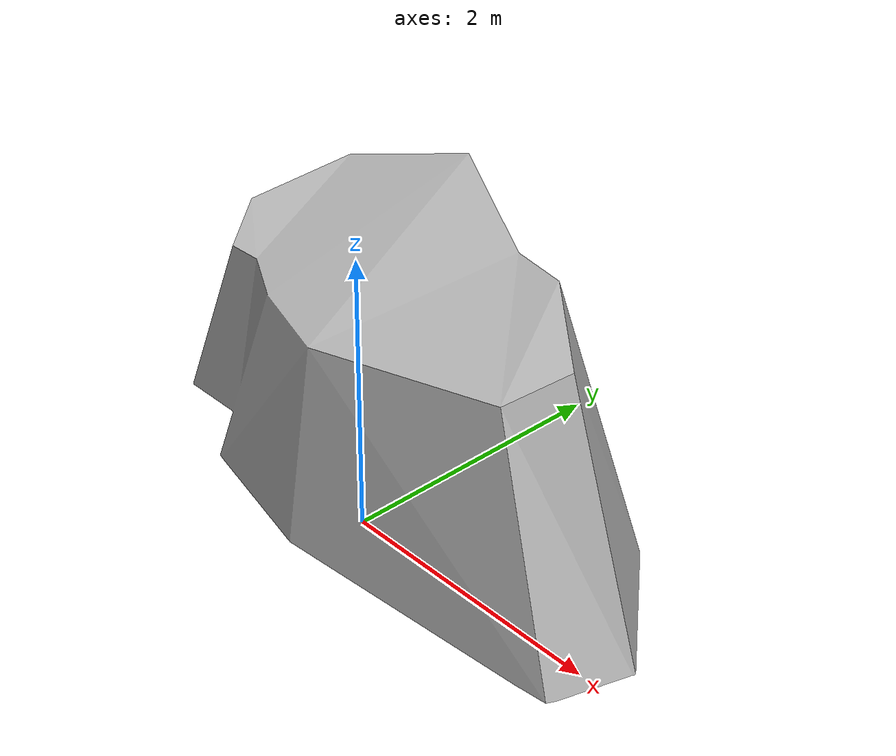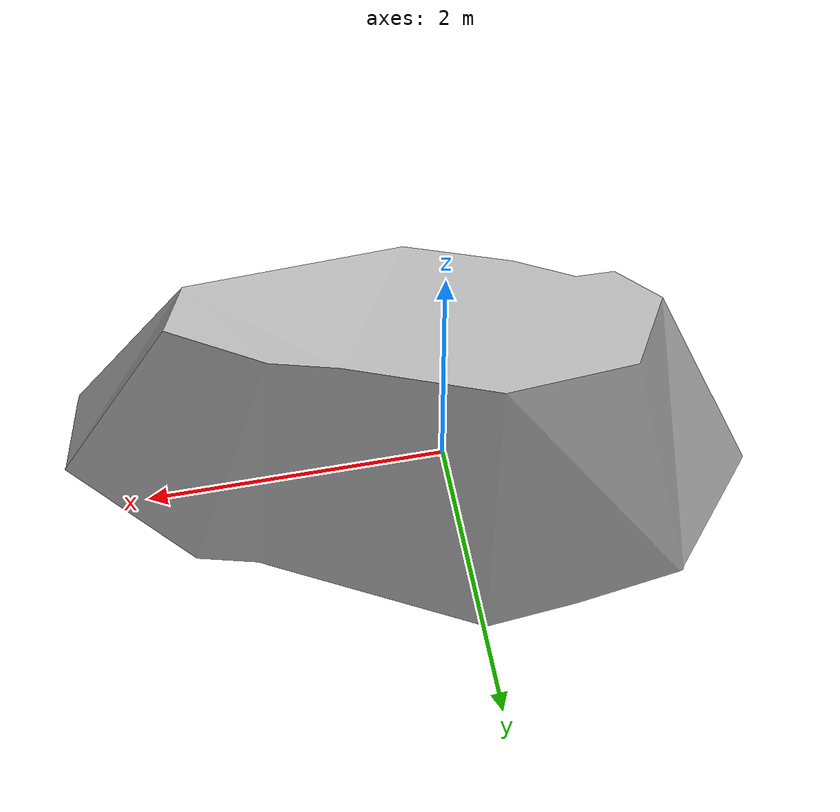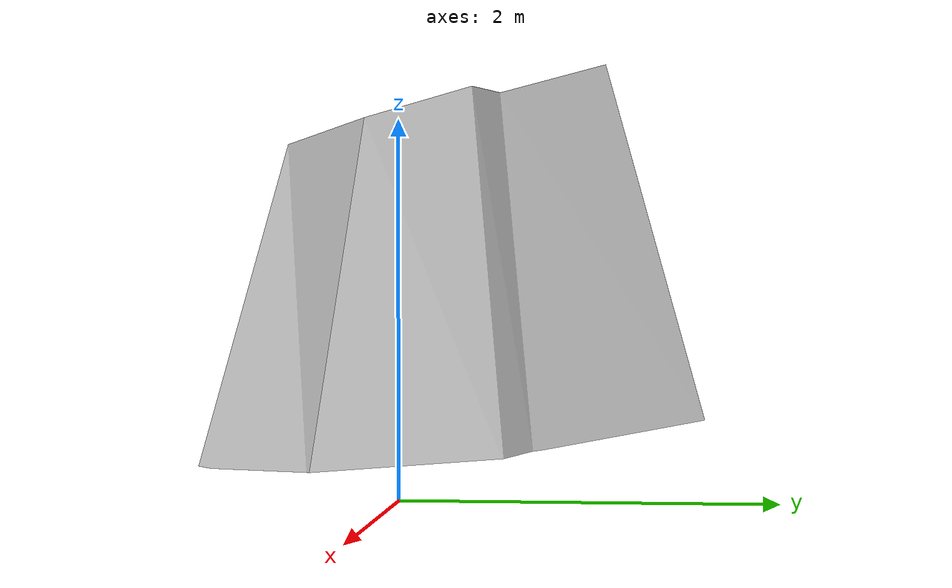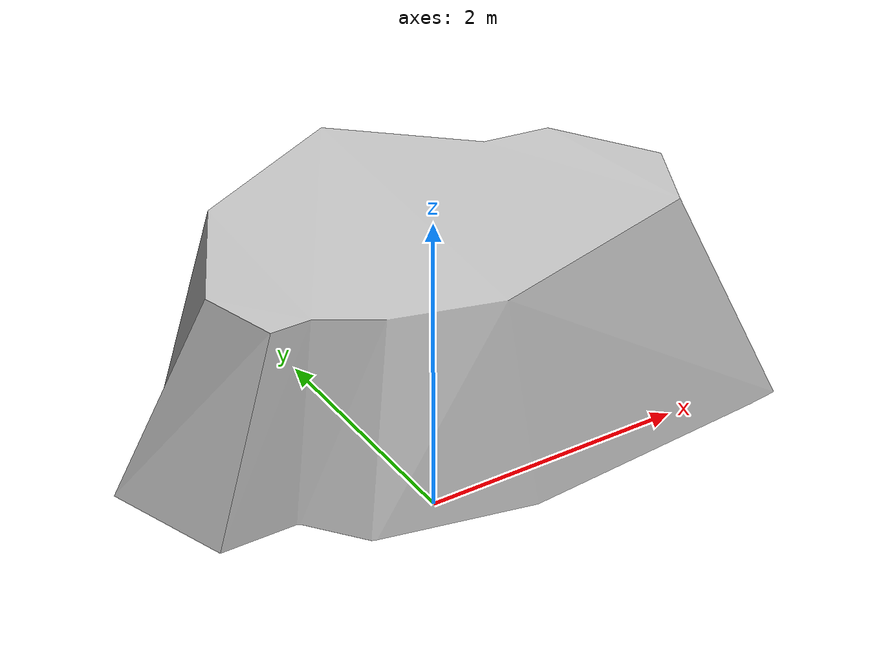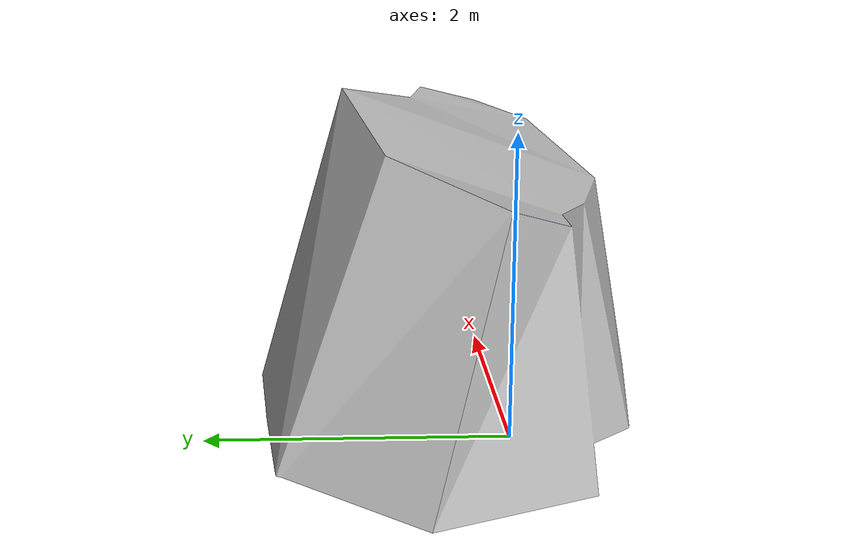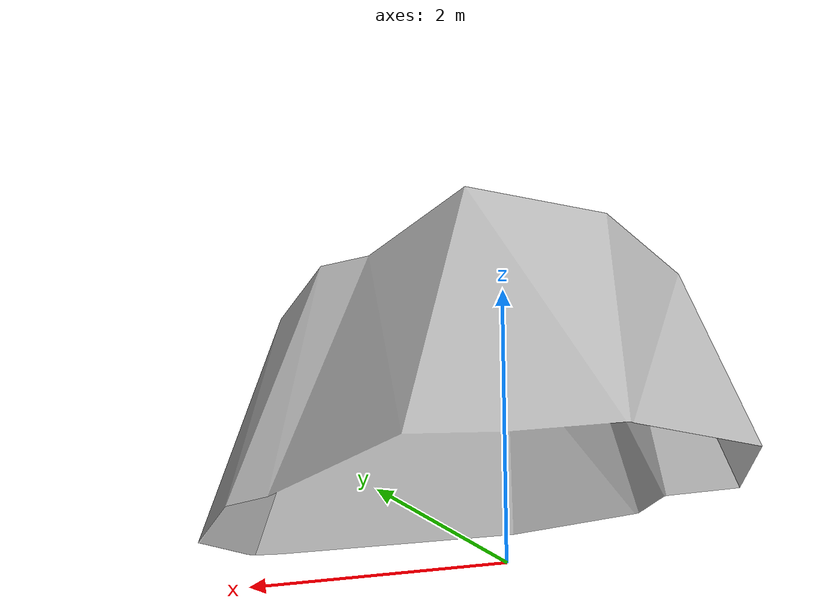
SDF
<?xml version="1.0" ?>
<sdf version="1.6">
  <model name="rock2">
    <pose>0 0 0.4 0 0 0</pose>
    <static>true</static>
    <link name="link">
      <collision name='collision1'>
        <pose frame=''>-.3 .4 .3 0 1.55 -.15</pose>
        <geometry>
          <cylinder>
            <radius>1.0</radius>
            <length>2.0</length>
          </cylinder>
        </geometry>
      </collision>
      <collision name="collision2">
        <pose frame=''>1.2 .1 .3 0 1.55 -.15</pose>
        <geometry>
          <cylinder>
            <radius>.7</radius>
            <length>1.8</length>
          </cylinder>
        </geometry>
      </collision>
      <visual name="visual">
        <geometry>
          <mesh>
            <uri>model://rock_2/meshes/model.dae</uri>
          </mesh>
        </geometry>
        <material>
          <script>
            <uri>model://rock_2/materials/scripts</uri>
            <uri>model://rock_2/materials/textures</uri>
            <name>rock/2</name>
          </script>
        </material>
      </visual>
    </link>
  </model>
</sdf>
